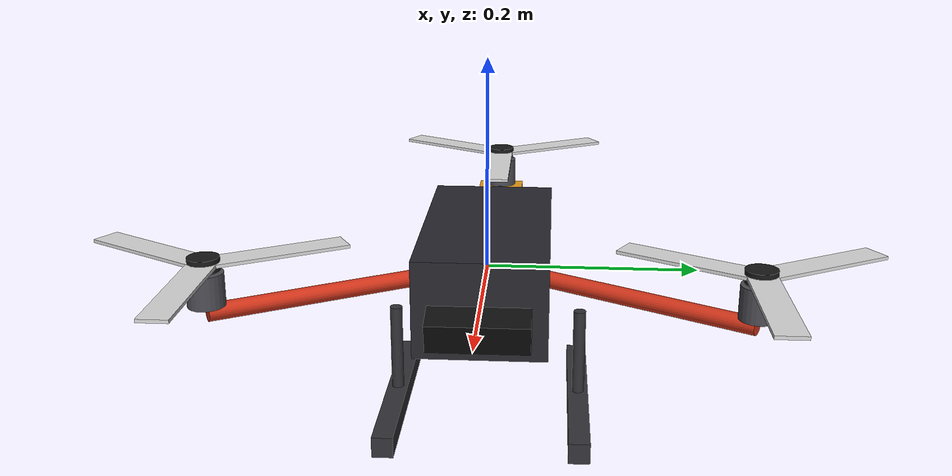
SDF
<?xml version="1.0"?>
<sdf version="1.9">
  <model name="tricopter">

    <link name="base_link">
      <inertial>
        <mass>2.58</mass>
        <inertia>
          <ixx>0.0125</ixx><iyy>0.0146</iyy><izz>0.0209</izz>
          <ixy>0</ixy><ixz>0</ixz><iyz>0</iyz>
        </inertia>
      </inertial>

      <collision name="body_collision">
        <geometry><box><size>0.24 0.12 0.09</size></box></geometry>
      </collision>
      <collision name="skid_left_collision">
        <pose>0 0.09 -0.14 0 0 0</pose>
        <geometry><box><size>0.22 0.02 0.02</size></box></geometry>
      </collision>
      <collision name="skid_right_collision">
        <pose>0 -0.09 -0.14 0 0 0</pose>
        <geometry><box><size>0.22 0.02 0.02</size></box></geometry>
      </collision>

      <visual name="body_visual">
        <geometry><box><size>0.24 0.12 0.09</size></box></geometry>
        <material>
          <ambient>0.1 0.1 0.12 1</ambient>
          <diffuse>0.15 0.15 0.18 1</diffuse>
        </material>
      </visual>
      <visual name="arm_front_right">
        <pose>0.0675 -0.11691 0 0 1.5708 -1.0472</pose>
        <geometry><cylinder><radius>0.008</radius><length>0.27</length></cylinder></geometry>
        <material><diffuse>0.8 0.2 0.1 1</diffuse></material>
      </visual>
      <visual name="arm_front_left">
        <pose>0.0675 0.11691 0 0 1.5708 1.0472</pose>
        <geometry><cylinder><radius>0.008</radius><length>0.27</length></cylinder></geometry>
        <material><diffuse>0.8 0.2 0.1 1</diffuse></material>
      </visual>
      <visual name="arm_rear">
        <pose>-0.135 0 0 0 1.5708 0</pose>
        <geometry><cylinder><radius>0.008</radius><length>0.27</length></cylinder></geometry>
        <material><diffuse>0.2 0.2 0.22 1</diffuse></material>
      </visual>
      <visual name="pod_front_right">
        <pose>0.135 -0.23383 0.022 0 0 0</pose>
        <geometry><cylinder><radius>0.0165</radius><length>0.03</length></cylinder></geometry>
        <material><diffuse>0.3 0.3 0.33 1</diffuse></material>
      </visual>
      <visual name="pod_front_left">
        <pose>0.135 0.23383 0.022 0 0 0</pose>
        <geometry><cylinder><radius>0.0165</radius><length>0.03</length></cylinder></geometry>
        <material><diffuse>0.3 0.3 0.33 1</diffuse></material>
      </visual>
      <visual name="skid_left_visual">
        <pose>0 0.09 -0.14 0 0 0</pose>
        <geometry><box><size>0.22 0.02 0.02</size></box></geometry>
        <material><diffuse>0.2 0.2 0.22 1</diffuse></material>
      </visual>
      <visual name="skid_right_visual">
        <pose>0 -0.09 -0.14 0 0 0</pose>
        <geometry><box><size>0.22 0.02 0.02</size></box></geometry>
        <material><diffuse>0.2 0.2 0.22 1</diffuse></material>
      </visual>
      <visual name="strut_left">
        <pose>0 0.09 -0.095 0 0 0</pose>
        <geometry><cylinder><radius>0.006</radius><length>0.1</length></cylinder></geometry>
        <material><diffuse>0.2 0.2 0.22 1</diffuse></material>
      </visual>
      <visual name="strut_right">
        <pose>0 -0.09 -0.095 0 0 0</pose>
        <geometry><cylinder><radius>0.006</radius><length>0.1</length></cylinder></geometry>
        <material><diffuse>0.2 0.2 0.22 1</diffuse></material>
      </visual>
    </link>

    <joint name="imu_joint" type="fixed">
      <parent>base_link</parent>
      <child>imu_link</child>
    </joint>

    <link name="imu_link">
      <pose>0 0 0.02 0 0 0</pose>
      <inertial>
        <mass>0.015</mass>
        <inertia>
          <ixx>1e-5</ixx><iyy>1e-5</iyy><izz>1e-5</izz>
          <ixy>0</ixy><ixz>0</ixz><iyz>0</iyz>
        </inertia>
      </inertial>
      <sensor name="imu_sensor" type="imu">
        <pose degrees="true">0 0 0 180 0 0</pose>
        <always_on>1</always_on>
        <update_rate>1000</update_rate>
        <imu>
          <angular_velocity>
            <x><noise type="gaussian"><mean>0</mean><stddev>0.0003394</stddev>
              <bias_mean>0.0000075</bias_mean><bias_stddev>0.0000008</bias_stddev></noise></x>
            <y><noise type="gaussian"><mean>0</mean><stddev>0.0003394</stddev>
              <bias_mean>0.0000075</bias_mean><bias_stddev>0.0000008</bias_stddev></noise></y>
            <z><noise type="gaussian"><mean>0</mean><stddev>0.0003394</stddev>
              <bias_mean>0.0000075</bias_mean><bias_stddev>0.0000008</bias_stddev></noise></z>
          </angular_velocity>
          <linear_acceleration>
            <x><noise type="gaussian"><mean>0</mean><stddev>0.004</stddev>
              <bias_mean>0.1</bias_mean><bias_stddev>0.001</bias_stddev></noise></x>
            <y><noise type="gaussian"><mean>0</mean><stddev>0.004</stddev>
              <bias_mean>0.1</bias_mean><bias_stddev>0.001</bias_stddev></noise></y>
            <z><noise type="gaussian"><mean>0</mean><stddev>0.004</stddev>
              <bias_mean>0.1</bias_mean><bias_stddev>0.001</bias_stddev></noise></z>
          </linear_acceleration>
        </imu>
      </sensor>
    </link>

    <!-- Rigid nose mount, pitched 15 deg down. -->
    <joint name="camera_joint" type="fixed">
      <parent>base_link</parent>
      <child>camera_link</child>
    </joint>

    <link name="camera_link">
      <pose>0.135 0 -0.01 0 0.2618 0</pose>
      <inertial>
        <mass>0.091</mass>
        <inertia>
          <ixx>2e-5</ixx><iyy>2e-5</iyy><izz>2e-5</izz>
          <ixy>0</ixy><ixz>0</ixz><iyz>0</iyz>
        </inertia>
      </inertial>
      <visual name="camera_visual">
        <geometry><box><size>0.029 0.091 0.028</size></box></geometry>
        <material><diffuse>0.05 0.05 0.05 1</diffuse></material>
      </visual>
      <sensor name="rgbd" type="rgbd_camera">
        <always_on>1</always_on>
        <update_rate>15</update_rate>
        <topic>rgbd</topic>
        <camera>
          <horizontal_fov>1.2008</horizontal_fov>
          <image>
            <width>640</width>
            <height>400</height>
            <format>R8G8B8</format>
          </image>
          <clip><near>0.1</near><far>40.0</far></clip>
          <!-- 30 m is the usable far end. Gazebo can only add constant noise, so the
               stereo error model is scripts/depth_noise.py instead. -->
          <depth_camera><clip><near>0.7</near><far>30.0</far></clip></depth_camera>
          <distortion>
            <k1>0</k1><k2>0</k2><k3>0</k3><p1>0</p1><p2>0</p2>
            <center>0.5 0.5</center>
          </distortion>
          <optical_frame_id>camera_optical_frame</optical_frame_id>
        </camera>
      </sensor>
    </link>

    <joint name="rotor_fr_joint" type="revolute">
      <parent>base_link</parent>
      <child>rotor_fr</child>
      <axis>
        <xyz>0 0 1</xyz>
        <limit><lower>-1e16</lower><upper>1e16</upper></limit>
        <dynamics><damping>0.0001</damping></dynamics>
      </axis>
    </joint>

    <link name="rotor_fr">
      <pose>0.135 -0.23383 0.045 0 0 0</pose>
      <inertial>
        <mass>0.13</mass>
        <inertia>
          <ixx>8e-5</ixx><iyy>8e-5</iyy><izz>1.3e-4</izz>
          <ixy>0</ixy><ixz>0</ixz><iyz>0</iyz>
        </inertia>
      </inertial>
      <collision name="disc_collision">
        <geometry><cylinder><radius>0.127</radius><length>0.008</length></cylinder></geometry>
      </collision>
      <visual name="hub"><geometry><cylinder><radius>0.014</radius><length>0.012</length></cylinder></geometry>
        <material><diffuse>0.1 0.1 0.1 1</diffuse></material></visual>
      <visual name="blade_a"><pose>0.0635 0 0 0 0 0</pose>
        <geometry><box><size>0.127 0.026 0.003</size></box></geometry>
        <material><diffuse>0.85 0.85 0.85 0.9</diffuse></material></visual>
      <visual name="blade_b"><pose>-0.03175 0.055 0 0 0 2.0944</pose>
        <geometry><box><size>0.127 0.026 0.003</size></box></geometry>
        <material><diffuse>0.85 0.85 0.85 0.9</diffuse></material></visual>
      <visual name="blade_c"><pose>-0.03175 -0.055 0 0 0 -2.0944</pose>
        <geometry><box><size>0.127 0.026 0.003</size></box></geometry>
        <material><diffuse>0.85 0.85 0.85 0.9</diffuse></material></visual>
    </link>

    <joint name="rotor_fl_joint" type="revolute">
      <parent>base_link</parent>
      <child>rotor_fl</child>
      <axis>
        <xyz>0 0 1</xyz>
        <limit><lower>-1e16</lower><upper>1e16</upper></limit>
        <dynamics><damping>0.0001</damping></dynamics>
      </axis>
    </joint>

    <link name="rotor_fl">
      <pose>0.135 0.23383 0.045 0 0 0</pose>
      <inertial>
        <mass>0.13</mass>
        <inertia>
          <ixx>8e-5</ixx><iyy>8e-5</iyy><izz>1.3e-4</izz>
          <ixy>0</ixy><ixz>0</ixz><iyz>0</iyz>
        </inertia>
      </inertial>
      <collision name="disc_collision">
        <geometry><cylinder><radius>0.127</radius><length>0.008</length></cylinder></geometry>
      </collision>
      <visual name="hub"><geometry><cylinder><radius>0.014</radius><length>0.012</length></cylinder></geometry>
        <material><diffuse>0.1 0.1 0.1 1</diffuse></material></visual>
      <visual name="blade_a"><pose>0.0635 0 0 0 0 0</pose>
        <geometry><box><size>0.127 0.026 0.003</size></box></geometry>
        <material><diffuse>0.85 0.85 0.85 0.9</diffuse></material></visual>
      <visual name="blade_b"><pose>-0.03175 0.055 0 0 0 2.0944</pose>
        <geometry><box><size>0.127 0.026 0.003</size></box></geometry>
        <material><diffuse>0.85 0.85 0.85 0.9</diffuse></material></visual>
      <visual name="blade_c"><pose>-0.03175 -0.055 0 0 0 -2.0944</pose>
        <geometry><box><size>0.127 0.026 0.003</size></box></geometry>
        <material><diffuse>0.85 0.85 0.85 0.9</diffuse></material></visual>
    </link>

    <!-- Tail tilt: axis is body X, so tilting vectors the rear thrust into +/-Y
         and that is the only source of yaw authority on a tricopter. -->
    <joint name="tail_tilt_joint" type="revolute">
      <parent>base_link</parent>
      <child>tail_tilt_link</child>
      <axis>
        <xyz>1 0 0</xyz>
        <limit><lower>-0.7854</lower><upper>0.7854</upper><effort>8</effort><velocity>12</velocity></limit>
        <dynamics><damping>0.02</damping></dynamics>
      </axis>
    </joint>

    <link name="tail_tilt_link">
      <pose>-0.27 0 0 0 0 0</pose>
      <inertial>
        <mass>0.06</mass>
        <inertia>
          <ixx>3e-5</ixx><iyy>5e-5</iyy><izz>5e-5</izz>
          <ixy>0</ixy><ixz>0</ixz><iyz>0</iyz>
        </inertia>
      </inertial>
      <visual name="pod"><pose>0 0 0.022 0 0 0</pose>
        <geometry><cylinder><radius>0.0165</radius><length>0.03</length></cylinder></geometry>
        <material><diffuse>0.3 0.3 0.33 1</diffuse></material></visual>
      <visual name="yoke"><pose>0 0 0 0 0 0</pose>
        <geometry><box><size>0.03 0.05 0.012</size></box></geometry>
        <material><diffuse>0.9 0.6 0.1 1</diffuse></material></visual>
    </link>

    <joint name="rotor_rear_joint" type="revolute">
      <parent>tail_tilt_link</parent>
      <child>rotor_rear</child>
      <axis>
        <xyz>0 0 1</xyz>
        <limit><lower>-1e16</lower><upper>1e16</upper></limit>
        <dynamics><damping>0.0001</damping></dynamics>
      </axis>
    </joint>

    <link name="rotor_rear">
      <pose>-0.27 0 0.045 0 0 0</pose>
      <inertial>
        <mass>0.13</mass>
        <inertia>
          <ixx>8e-5</ixx><iyy>8e-5</iyy><izz>1.3e-4</izz>
          <ixy>0</ixy><ixz>0</ixz><iyz>0</iyz>
        </inertia>
      </inertial>
      <collision name="disc_collision">
        <geometry><cylinder><radius>0.127</radius><length>0.008</length></cylinder></geometry>
      </collision>
      <visual name="hub"><geometry><cylinder><radius>0.014</radius><length>0.012</length></cylinder></geometry>
        <material><diffuse>0.1 0.1 0.1 1</diffuse></material></visual>
      <visual name="blade_a"><pose>0.0635 0 0 0 0 0</pose>
        <geometry><box><size>0.127 0.026 0.003</size></box></geometry>
        <material><diffuse>0.85 0.85 0.85 0.9</diffuse></material></visual>
      <visual name="blade_b"><pose>-0.03175 0.055 0 0 0 2.0944</pose>
        <geometry><box><size>0.127 0.026 0.003</size></box></geometry>
        <material><diffuse>0.85 0.85 0.85 0.9</diffuse></material></visual>
      <visual name="blade_c"><pose>-0.03175 -0.055 0 0 0 -2.0944</pose>
        <geometry><box><size>0.127 0.026 0.003</size></box></geometry>
        <material><diffuse>0.85 0.85 0.85 0.9</diffuse></material></visual>
    </link>

    <!-- Two opposite blades per rotor. A single off-axis blade puts a 0.9 N m moment
         on the hub that the physics step samples into a steady torque. -->
    <plugin filename="gz-sim-lift-drag-system" name="gz::sim::systems::LiftDrag">
      <a0>0.15</a0><cla>5.0</cla><cda>1.37</cda>
      <alpha_stall>0.35</alpha_stall><cla_stall>-2.0</cla_stall><cda_stall>0.0</cda_stall>
      <cp>0.089 0 0</cp>
      <area>0.00439</area>
      <air_density>1.2041</air_density>
      <forward>0 -1 0</forward>
      <upward>0 0 1</upward>
      <link_name>rotor_fr</link_name>
    </plugin>

    <plugin filename="gz-sim-lift-drag-system" name="gz::sim::systems::LiftDrag">
      <a0>0.15</a0><cla>5.0</cla><cda>1.37</cda>
      <alpha_stall>0.35</alpha_stall><cla_stall>-2.0</cla_stall><cda_stall>0.0</cda_stall>
      <cp>-0.089 0 0</cp>
      <area>0.00439</area>
      <air_density>1.2041</air_density>
      <forward>0 1 0</forward>
      <upward>0 0 1</upward>
      <link_name>rotor_fr</link_name>
    </plugin>

    <plugin filename="gz-sim-lift-drag-system" name="gz::sim::systems::LiftDrag">
      <a0>0.15</a0><cla>5.0</cla><cda>1.37</cda>
      <alpha_stall>0.35</alpha_stall><cla_stall>-2.0</cla_stall><cda_stall>0.0</cda_stall>
      <cp>0.089 0 0</cp>
      <area>0.00439</area>
      <air_density>1.2041</air_density>
      <forward>0 1 0</forward>
      <upward>0 0 1</upward>
      <link_name>rotor_fl</link_name>
    </plugin>

    <plugin filename="gz-sim-lift-drag-system" name="gz::sim::systems::LiftDrag">
      <a0>0.15</a0><cla>5.0</cla><cda>1.37</cda>
      <alpha_stall>0.35</alpha_stall><cla_stall>-2.0</cla_stall><cda_stall>0.0</cda_stall>
      <cp>-0.089 0 0</cp>
      <area>0.00439</area>
      <air_density>1.2041</air_density>
      <forward>0 -1 0</forward>
      <upward>0 0 1</upward>
      <link_name>rotor_fl</link_name>
    </plugin>

    <plugin filename="gz-sim-lift-drag-system" name="gz::sim::systems::LiftDrag">
      <a0>0.15</a0><cla>5.0</cla><cda>1.37</cda>
      <alpha_stall>0.35</alpha_stall><cla_stall>-2.0</cla_stall><cda_stall>0.0</cda_stall>
      <cp>0.089 0 0</cp>
      <area>0.00439</area>
      <air_density>1.2041</air_density>
      <forward>0 1 0</forward>
      <upward>0 0 1</upward>
      <link_name>rotor_rear</link_name>
    </plugin>

    <plugin filename="gz-sim-lift-drag-system" name="gz::sim::systems::LiftDrag">
      <a0>0.15</a0><cla>5.0</cla><cda>1.37</cda>
      <alpha_stall>0.35</alpha_stall><cla_stall>-2.0</cla_stall><cda_stall>0.0</cda_stall>
      <cp>-0.089 0 0</cp>
      <area>0.00439</area>
      <air_density>1.2041</air_density>
      <forward>0 -1 0</forward>
      <upward>0 0 1</upward>
      <link_name>rotor_rear</link_name>
    </plugin>

    <plugin filename="gz-sim-odometry-publisher-system"
            name="gz::sim::systems::OdometryPublisher">
      <odom_frame>map</odom_frame>
      <robot_base_frame>base_link</robot_base_frame>
      <dimensions>3</dimensions>
      <odom_publish_frequency>50</odom_publish_frequency>
      <odom_topic>/model/tricopter/odometry_truth</odom_topic>
      <tf_topic>/model/tricopter/pose</tf_topic>
    </plugin>

    <!-- ArduPilot servo channels: tricopter mixing uses outputs 1, 2 and 4 for the
         motors and output 7 for the tail servo, so channels 2, 4 and 5 are unused. -->
    <plugin name="ArduPilotPlugin" filename="ArduPilotPlugin">
      <fdm_addr>127.0.0.1</fdm_addr>
      <fdm_port_in>9002</fdm_port_in>
      <connectionTimeoutMaxCount>5</connectionTimeoutMaxCount>
      <lock_step>1</lock_step>
      <have_32_channels>0</have_32_channels>
      <modelXYZToAirplaneXForwardZDown degrees="true">0 0 0 180 0 0</modelXYZToAirplaneXForwardZDown>
      <gazeboXYZToNED degrees="true">0 0 0 180 0 90</gazeboXYZToNED>
      <imuName>imu_sensor</imuName>

      <control channel="0">
        <jointName>rotor_fr_joint</jointName>
        <useForce>1</useForce>
        <multiplier>-1000</multiplier>
        <offset>0</offset>
        <servo_min>1000</servo_min>
        <servo_max>2000</servo_max>
        <type>VELOCITY</type>
        <p_gain>0.05</p_gain><i_gain>0.05</i_gain><d_gain>0</d_gain>
        <i_max>2.0</i_max><i_min>-2.0</i_min>
        <cmd_max>2.0</cmd_max><cmd_min>-2.0</cmd_min>
        <rotorVelocitySlowdownSim>1</rotorVelocitySlowdownSim>
      </control>

      <control channel="1">
        <jointName>rotor_fl_joint</jointName>
        <useForce>1</useForce>
        <multiplier>1000</multiplier>
        <offset>0</offset>
        <servo_min>1000</servo_min>
        <servo_max>2000</servo_max>
        <type>VELOCITY</type>
        <p_gain>0.05</p_gain><i_gain>0.05</i_gain><d_gain>0</d_gain>
        <i_max>2.0</i_max><i_min>-2.0</i_min>
        <cmd_max>2.0</cmd_max><cmd_min>-2.0</cmd_min>
        <rotorVelocitySlowdownSim>1</rotorVelocitySlowdownSim>
      </control>

      <control channel="3">
        <jointName>rotor_rear_joint</jointName>
        <useForce>1</useForce>
        <multiplier>1000</multiplier>
        <offset>0</offset>
        <servo_min>1000</servo_min>
        <servo_max>2000</servo_max>
        <type>VELOCITY</type>
        <p_gain>0.05</p_gain><i_gain>0.05</i_gain><d_gain>0</d_gain>
        <i_max>2.0</i_max><i_min>-2.0</i_min>
        <cmd_max>2.0</cmd_max><cmd_min>-2.0</cmd_min>
        <rotorVelocitySlowdownSim>1</rotorVelocitySlowdownSim>
      </control>

      <control channel="6">
        <jointName>tail_tilt_joint</jointName>
        <multiplier>-1.0472</multiplier>
        <offset>-0.5</offset>
        <servo_min>1000</servo_min>
        <servo_max>2000</servo_max>
        <type>COMMAND</type>
        <cmd_topic>/model/tricopter/tail_tilt/cmd</cmd_topic>
      </control>
    </plugin>

    <!-- The plugin's POSITION mode cannot hold this light joint, see docs/NOTES.md. -->
    <plugin filename="gz-sim-joint-position-controller-system"
            name="gz::sim::systems::JointPositionController">
      <joint_name>tail_tilt_joint</joint_name>
      <topic>/model/tricopter/tail_tilt/cmd</topic>
      <use_velocity_commands>true</use_velocity_commands>
      <p_gain>30</p_gain>
      <cmd_max>10</cmd_max>
      <cmd_min>-10</cmd_min>
    </plugin>

  </model>
</sdf>
